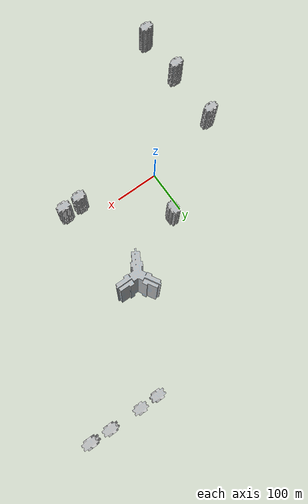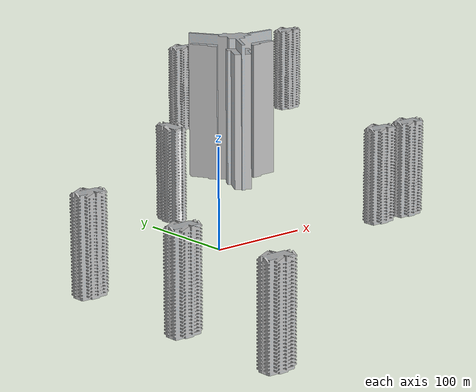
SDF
<sdf version="1.6">
 <world name="default">
  <plugin name="ros_interface_plugin" filename="librotors_gazebo_ros_interface_plugin.so"/>
  <light name="sun" type="directional">
   <pose>0 0 10 0 -0 0</pose>
   <diffuse>0.8 0.8 0.8 1</diffuse>
   <specular>0.2 0.2 0.2 1</specular>
   <attenuation>
    <range>1000</range>
    <constant>0.9</constant>
    <linear>0.01</linear>
    <quadratic>0.001</quadratic>
   </attenuation>
   <direction>-0.5 0.1 -0.9</direction>
  </light>
  <gravity>0 0 -9.8</gravity>
  <magnetic_field>6e-06 2.3e-05 -4.2e-05</magnetic_field>
  <atmosphere type="adiabatic"/>
  <physics name="default_physics" default="0" type="ode">
   <max_step_size>0.001</max_step_size>
   <real_time_factor>1</real_time_factor>
   <real_time_update_rate>1000</real_time_update_rate>
  </physics>
  <scene><ambient>0.4 0.4 0.4 1</ambient><background>0.7 0.7 0.7 1</background><shadows>1</shadows></scene>
  <audio><device>default</device></audio>
  <spherical_coordinates>
   <surface_model>EARTH_WGS84</surface_model>
   <latitude_deg>0</latitude_deg>
   <longitude_deg>0</longitude_deg>
   <elevation>0</elevation>
   <heading_deg>0</heading_deg>
  </spherical_coordinates>
  <model name="city">
   <link name="link_1">
    <visual name="visual">
     <geometry><mesh><uri>/usr/share/gazebo-9/models/city/model.dae</uri><scale>1 1 1</scale></mesh></geometry>
    </visual>
    <collision name="collision">
     <geometry><mesh><uri>/usr/share/gazebo-9/models/city/model.dae</uri><scale>1 1 1</scale></mesh></geometry>
    </collision>
   </link>
   <static>1</static>
   <pose>-720.72 -634.607 0 0 -0 0</pose>
  </model>
  <model name="res2">
   <link name="link_5">
    <pose>-0 4e-06 0 0 -0 0</pose>
    <visual name="visual">
     <geometry><mesh><uri>/usr/share/gazebo-9/models/res2/model.dae</uri><scale>1 1 1</scale></mesh></geometry>
    </visual>
    <collision name="collision">
     <geometry><mesh><uri>/usr/share/gazebo-9/models/res2/model.dae</uri><scale>1 1 1</scale></mesh></geometry>
    </collision>
   </link>
   <static>1</static>
   <pose>180.667 -38.8443 0 0 -0 0</pose>
  </model>
  <model name="res2_0">
   <link name="link_5">
    <pose>-0 4e-06 0 0 -0 0</pose>
    <visual name="visual">
     <geometry><mesh><uri>/usr/share/gazebo-9/models/res2/model.dae</uri><scale>1 1 1</scale></mesh></geometry>
    </visual>
    <collision name="collision">
     <geometry><mesh><uri>/usr/share/gazebo-9/models/res2/model.dae</uri><scale>1 1 1</scale></mesh></geometry>
    </collision>
   </link>
   <static>1</static>
   <pose>219.843 -37.8283 0 0 -0 0</pose>
  </model>
  <model name="res2_1">
   <link name="link_5">
    <pose>-0 4e-06 0 0 -0 0</pose>
    <visual name="visual">
     <geometry><mesh><uri>/usr/share/gazebo-9/models/res2/model.dae</uri><scale>1 1 1</scale></mesh></geometry>
    </visual>
    <collision name="collision">
     <geometry><mesh><uri>/usr/share/gazebo-9/models/res2/model.dae</uri><scale>1 1 1</scale></mesh></geometry>
    </collision>
   </link>
   <static>1</static>
   <pose>325.312 392.25 0 0 -0 0</pose>
  </model>
  <model name="res2_2">
   <link name="link_5">
    <pose>-0 4e-06 0 0 -0 0</pose>
    <visual name="visual">
     <geometry><mesh><uri>/usr/share/gazebo-9/models/res2/model.dae</uri><scale>1 1 1</scale></mesh></geometry>
    </visual>
    <collision name="collision">
     <geometry><mesh><uri>/usr/share/gazebo-9/models/res2/model.dae</uri><scale>1 1 1</scale></mesh></geometry>
    </collision>
   </link>
   <static>1</static>
   <pose>395.98 390.009 0 0 -0 0</pose>
  </model>
  <model name="res2_3">
   <link name="link_5">
    <pose>-0 4e-06 0 0 -0 0</pose>
    <visual name="visual">
     <geometry><mesh><uri>/usr/share/gazebo-9/models/res2/model.dae</uri><scale>1 1 1</scale></mesh></geometry>
    </visual>
    <collision name="collision">
     <geometry><mesh><uri>/usr/share/gazebo-9/models/res2/model.dae</uri><scale>1 1 1</scale></mesh></geometry>
    </collision>
   </link>
   <static>1</static>
   <pose>442.323 388.541 0 0 -0 0</pose>
  </model>
  <model name="res2_4">
   <link name="link_5">
    <pose>-0 4e-06 0 0 -0 0</pose>
    <visual name="visual">
     <geometry><mesh><uri>/usr/share/gazebo-9/models/res2/model.dae</uri><scale>1 1 1</scale></mesh></geometry>
    </visual>
    <collision name="collision">
     <geometry><mesh><uri>/usr/share/gazebo-9/models/res2/model.dae</uri><scale>1 1 1</scale></mesh></geometry>
    </collision>
   </link>
   <static>1</static>
   <pose>283.057 391.765 0 0 -0 0</pose>
  </model>
  <model name="res2_5">
   <link name="link_5">
    <pose>-0 4e-06 0 0 -0 0</pose>
    <visual name="visual">
     <geometry><mesh><uri>/usr/share/gazebo-9/models/res2/model.dae</uri><scale>1 1 1</scale></mesh></geometry>
    </visual>
    <collision name="collision">
     <geometry><mesh><uri>/usr/share/gazebo-9/models/res2/model.dae</uri><scale>1 1 1</scale></mesh></geometry>
    </collision>
   </link>
   <static>1</static>
   <pose>38.3044 107.977 0 0 -0 1.57</pose>
  </model>
  <model name="res4">
   <link name="link_1">
    <pose>8e-06 2e-06 0 0 -0 0</pose>
    <visual name="visual">
     <geometry><mesh><uri>/usr/share/gazebo-9/models/res4/model.dae</uri><scale>1 1 1</scale></mesh></geometry>
    </visual>
    <collision name="collision">
     <geometry><mesh><uri>/usr/share/gazebo-9/models/res4/model.dae</uri><scale>1 1 1</scale></mesh></geometry>
    </collision>
   </link>
   <static>1</static>
   <pose>190.338 180.629 0 0 -0 0</pose>
  </model>
  <model name="res2_6">
   <link name="link_5">
    <pose>-0 4e-06 0 0 -0 0</pose>
    <visual name="visual">
     <geometry><mesh><uri>/usr/share/gazebo-9/models/res2/model.dae</uri><scale>1 1 1</scale></mesh></geometry>
    </visual>
    <collision name="collision">
     <geometry><mesh><uri>/usr/share/gazebo-9/models/res2/model.dae</uri><scale>1 1 1</scale></mesh></geometry>
    </collision>
   </link>
   <static>1</static>
   <pose>-177.501 -289.877 0 0 -0 0</pose>
  </model>
  <model name="res2_7">
   <link name="link_5">
    <pose>-0 4e-06 0 0 -0 0</pose>
    <visual name="visual">
     <geometry><mesh><uri>/usr/share/gazebo-9/models/res2/model.dae</uri><scale>1 1 1</scale></mesh></geometry>
    </visual>
    <collision name="collision">
     <geometry><mesh><uri>/usr/share/gazebo-9/models/res2/model.dae</uri><scale>1 1 1</scale></mesh></geometry>
    </collision>
   </link>
   <static>1</static>
   <pose>-179.772 -175.219 0 0 -0 0</pose>
  </model>
  <model name="res2_8">
   <link name="link_5">
    <pose>-0 4e-06 0 0 -0 0</pose>
    <visual name="visual">
     <geometry><mesh><uri>/usr/share/gazebo-9/models/res2/model.dae</uri><scale>1 1 1</scale></mesh></geometry>
    </visual>
    <collision name="collision">
     <geometry><mesh><uri>/usr/share/gazebo-9/models/res2/model.dae</uri><scale>1 1 1</scale></mesh></geometry>
    </collision>
   </link>
   <static>1</static>
   <pose>-176.053 -40.9457 0 0 -0 0</pose>
  </model>
 </world>
</sdf>
